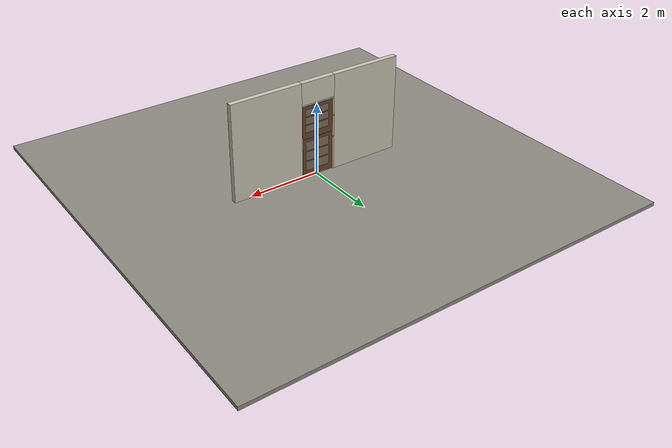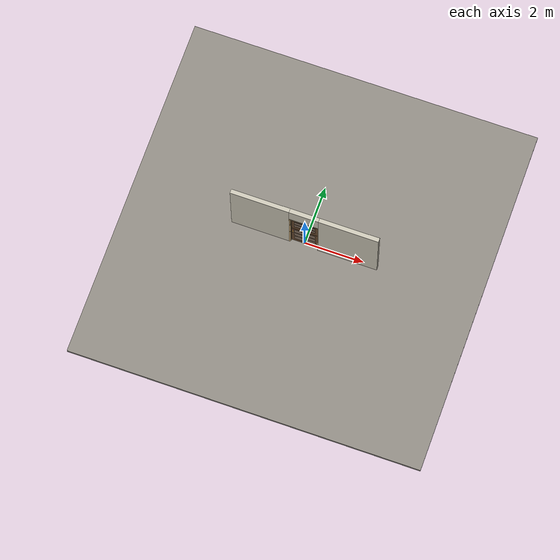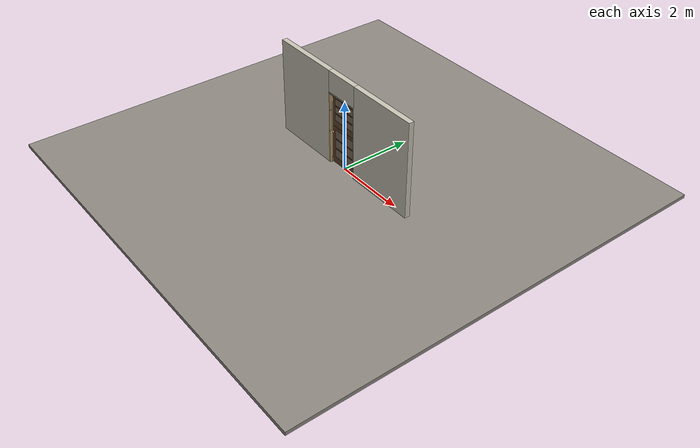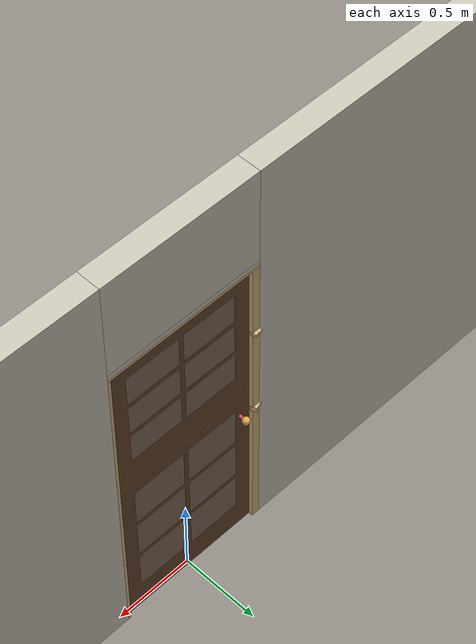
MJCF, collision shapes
<?xml version="1.0" ?>
<mujoco model="db0118_dutch_minimal">
  <compiler angle="radian" meshdir="../../hardware" texturedir="../../textures" autolimits="true" inertiafromgeom="false"/>
  <option timestep="0.002" integrator="implicitfast" cone="elliptic" impratio="10" noslip_iterations="3">
    <flag multiccd="enable"/>
  </option>
  <size memory="16M"/>
  <default>
    <geom condim="4" solref="0.005 1" solimp="0.95 0.99 0.001"/>
    <joint solreflimit="0.005 1" solimplimit="0.95 0.99 0.001"/>
    <tendon solreflimit="0.005 1"/>
    <equality solref="0.002 1"/>
  </default>
  <visual>
    <headlight ambient="0.4 0.4 0.4" diffuse="0.7 0.7 0.7" specular="0.2 0.2 0.2"/>
    <quality shadowsize="4096"/>
    <map znear="0.01" zfar="60"/>
  </visual>
  <asset>
    <mesh name="knob_d1888f6f03" file="knob_d1888f6f03.obj"/>
    <material name="mat_floor" rgba="0.55 0.53 0.5 1" specular="0.2" shininess="0.15" reflectance="0"/>
    <material name="mat_wall" rgba="0.78 0.76 0.7 1" specular="0.2" shininess="0.1" reflectance="0"/>
    <material name="mat_leaf_lower" rgba="0.391 0.27 0.17 1" specular="0.2" shininess="0.5" reflectance="0"/>
    <material name="mat_glass" rgba="0.85 0.92 0.95 0.25" specular="0.2" shininess="0.95" reflectance="0.1"/>
    <material name="mat_leaf_upper" rgba="0.391 0.27 0.17 1" specular="0.2" shininess="0.5" reflectance="0"/>
    <material name="mat_op_brass" rgba="0.85 0.66 0.3 1" specular="0.8" shininess="0.75" reflectance="0.4"/>
    <material name="mat_trim" rgba="0.85 0.66 0.3 1" specular="0.8" shininess="0.75" reflectance="0.4"/>
    <material name="mat_bolt" rgba="0.85 0.66 0.3 1" specular="0.8" shininess="0.75" reflectance="0.4"/>
    <material name="mat_joinbolt" rgba="0.85 0.66 0.3 1" specular="0.8" shininess="0.75" reflectance="0.4"/>
    <material name="mat_frame" rgba="0.82 0.7 0.5 1" specular="0.2" shininess="0.45" reflectance="0"/>
    <material name="mat_hinge" rgba="0.65 0.66 0.68 1" specular="0.74" shininess="0.5" reflectance="0.36"/>
    <texture name="skybox" type="skybox" builtin="gradient" rgb1="0.6 0.7 0.85" rgb2="0.9 0.92 0.95" width="256" height="256"/>
  </asset>
  <worldbody>
    <light name="sun" pos="1.5 -2.5 4" dir="-0.3 0.5 -0.8" directional="true" diffuse="0.8 0.8 0.8" specular="0.3 0.3 0.3" castshadow="true"/>
    <light name="fill" pos="-1.5 2.5 3" dir="0.3 -0.5 -0.7" directional="true" diffuse="0.35 0.35 0.4" castshadow="false"/>
    <camera name="robot_view" pos="0 -2.572687 1.734312" xyaxes="1 0 0 0 0.26963 0.962964" fovy="52"/>
    <camera name="far_view" pos="0 2.511687 1.734312" xyaxes="-1 0 0 0 -0.26963 0.962964" fovy="52"/>
    <camera name="iso" pos="-1.932062 -2.165938 2.141063" xyaxes="0.741536 -0.670913 0 0.242917 0.268487 0.932151" fovy="46"/>
    <camera name="detail_handle" pos="-0.2065 -0.8685 1.245" xyaxes="0.97561 0.219512 0 -0.070934 0.315262 0.94635" fovy="38"/>
    <geom name="floor" type="box" size="6 6 0.05" pos="0 0 -0.05" material="mat_floor" group="0" contype="1" conaffinity="1" friction="0.8 0.005 0.0001" density="2400"/>
    <geom name="wall_left" type="box" size="0.99525 0.0725 1.35" pos="-1.50475 -0.0305 1.35" material="mat_wall" group="0" contype="1" conaffinity="1" friction="0.6 0.005 0.0001" density="800"/>
    <geom name="wall_right" type="box" size="1.01025 0.0725 1.35" pos="1.48975 -0.0305 1.35" material="mat_wall" group="0" contype="1" conaffinity="1" friction="0.6 0.005 0.0001" density="800"/>
    <geom name="wall_header" type="box" size="0.4945 0.0725 0.303" pos="-0.015 -0.0305 2.397" material="mat_wall" group="0" contype="1" conaffinity="1" friction="0.6 0.005 0.0001" density="800"/>
    <geom name="jamb_hinge" type="box" size="0.0095 0.0725 1.0225" pos="0.47 -0.0305 1.0225" material="mat_frame" group="0" contype="1" conaffinity="1" friction="0.6 0.005 0.0001" density="400"/>
    <geom name="strike_965_wall_n" type="box" size="0.0245 0.047575 0.0167" pos="-0.485 -0.055425 0.965" material="mat_frame" group="0" contype="1" conaffinity="1" friction="0.6 0.005 0.0001" density="400"/>
    <geom name="strike_965_wall_p" type="box" size="0.0245 0.008 0.0167" pos="-0.485 0.01585 0.965" material="mat_frame" group="0" contype="1" conaffinity="1" friction="0.6 0.005 0.0001" density="400"/>
    <geom name="strike_965_ramp" type="box" size="0.0245 0.020268 0.0167" pos="-0.490408 0.034645 0.965" quat="0.985179 0 0 0.171531" material="mat_frame" group="0" contype="1" conaffinity="1" friction="0.12 0.005 0.0001" density="400"/>
    <geom name="strike_965_back" type="box" size="0.01615 0.00785 0.0167" pos="-0.49335 0 0.965" material="mat_frame" group="0" contype="1" conaffinity="1" friction="0.6 0.005 0.0001" density="400"/>
    <geom name="strike_1575_wall_n" type="box" size="0.0245 0.04775 0.01" pos="-0.485 -0.05525 1.575" material="mat_frame" group="0" contype="1" conaffinity="1" friction="0.6 0.005 0.0001" density="400"/>
    <geom name="strike_1575_wall_p" type="box" size="0.0245 0.008 0.01" pos="-0.485 0.0155 1.575" material="mat_frame" group="0" contype="1" conaffinity="1" friction="0.6 0.005 0.0001" density="400"/>
    <geom name="strike_1575_ramp" type="box" size="0.0245 0.019412 0.01" pos="-0.487296 0.039595 1.575" quat="0.997916 0 0 0.064529" material="mat_frame" group="0" contype="1" conaffinity="1" friction="0.12 0.005 0.0001" density="400"/>
    <geom name="strike_1575_ramp_n" type="box" size="0.0245 0.019412 0.01" pos="-0.487296 -0.027595 1.575" quat="0.997916 0 0 -0.064529" material="mat_frame" group="0" contype="1" conaffinity="1" friction="0.12 0.005 0.0001" density="400"/>
    <geom name="strike_1575_back" type="box" size="0.0205 0.0075 0.01" pos="-0.489 0 1.575" material="mat_frame" group="0" contype="1" conaffinity="1" friction="0.6 0.005 0.0001" density="400"/>
    <geom name="jamb_strike_0" type="box" size="0.0245 0.0725 0.47415" pos="-0.485 -0.0305 0.47415" material="mat_frame" group="0" contype="1" conaffinity="1" friction="0.6 0.005 0.0001" density="400"/>
    <geom name="jamb_strike_1" type="box" size="0.0245 0.0725 0.29165" pos="-0.485 -0.0305 1.27335" material="mat_frame" group="0" contype="1" conaffinity="1" friction="0.6 0.005 0.0001" density="400"/>
    <geom name="jamb_strike_2" type="box" size="0.0245 0.0725 0.23" pos="-0.485 -0.0305 1.815" material="mat_frame" group="0" contype="1" conaffinity="1" friction="0.6 0.005 0.0001" density="400"/>
    <geom name="jamb_head" type="box" size="0.4945 0.0725 0.0095" pos="-0.015 -0.0305 2.0545" material="mat_frame" group="0" contype="1" conaffinity="1" friction="0.6 0.005 0.0001" density="400"/>
    <geom name="head_stud" type="box" size="0.4945 0.0725 0.015" pos="-0.015 -0.0305 2.079" material="mat_wall" group="0" contype="1" conaffinity="1" friction="0.6 0.005 0.0001" density="500"/>
    <geom name="stop_hinge" type="box" size="0.0055 0.016 1.0225" pos="0.455 -0.0385 1.0225" material="mat_frame" group="0" contype="1" conaffinity="1" friction="0.6 0.005 0.0001" density="400"/>
    <geom name="stop_strike" type="box" size="0.0055 0.016 1.0225" pos="-0.455 -0.0385 1.0225" material="mat_frame" group="0" contype="1" conaffinity="1" friction="0.6 0.005 0.0001" density="400"/>
    <geom name="stop_head" type="box" size="0.4605 0.016 0.0055" pos="0 -0.0385 2.0395" material="mat_frame" group="0" contype="1" conaffinity="1" friction="0.6 0.005 0.0001" density="400"/>
    <site name="approach_point" pos="0 -1.5 0" quat="1 0 0 0" size="0.05" rgba="0.2 0.9 0.2 0.5" group="4"/>
    <site name="goal_point" pos="0 1.5 0" quat="1 0 0 0" size="0.05" rgba="0.2 0.9 0.2 0.5" group="4"/>
    <site name="door_plane_center" pos="0 0 1.0225" quat="1 0 0 0" size="0.02" rgba="0.2 0.9 0.2 0.5" group="4"/>
    <body name="leaf_lower" pos="0.4605 0 0">
      <inertial pos="-0.46 0 0.578826" mass="22.087265" quat="-0.5 0.5 0.5 0.5" diaginertia="1.343953805 1.933396169 3.270037551"/>
      <joint name="leaf_lower_hinge" type="hinge" axis="0 0 -1" pos="-0.003 0.029 0" limited="true" range="0 1.745329" damping="0.30611" frictionloss="0.3875" armature="0.02"/>
      <geom name="leaf_lower_slab" type="box" size="0.457 0.022 0.551" pos="-0.46 0 0.563" material="mat_leaf_lower" group="0" contype="1" conaffinity="1" friction="0.4 0.005 0.0001" density="1"/>
      <geom name="leaf_lower_glass_0" type="box" size="0.17073 0.0228 0.128667" pos="-0.27427 0 0.320667" material="mat_glass" group="1" contype="0" conaffinity="0" density="1"/>
      <geom name="leaf_lower_glass_1" type="box" size="0.17073 0.0228 0.128667" pos="-0.64573 0 0.320667" material="mat_glass" group="1" contype="0" conaffinity="0" density="1"/>
      <geom name="leaf_lower_glass_2" type="box" size="0.17073 0.0228 0.128667" pos="-0.27427 0 0.608" material="mat_glass" group="1" contype="0" conaffinity="0" density="1"/>
      <geom name="leaf_lower_glass_3" type="box" size="0.17073 0.0228 0.128667" pos="-0.64573 0 0.608" material="mat_glass" group="1" contype="0" conaffinity="0" density="1"/>
      <geom name="leaf_lower_glass_4" type="box" size="0.17073 0.0228 0.128667" pos="-0.27427 0 0.895333" material="mat_glass" group="1" contype="0" conaffinity="0" density="1"/>
      <geom name="leaf_lower_glass_5" type="box" size="0.17073 0.0228 0.128667" pos="-0.64573 0 0.895333" material="mat_glass" group="1" contype="0" conaffinity="0" density="1"/>
      <body name="lower_handle" pos="-0.847 0 0.965">
        <inertial pos="0 0 0" mass="1.098683" quat="0.5 0.5 0.5 0.5" diaginertia="0.000311555 0.004248143 0.004248143"/>
        <joint name="lower_handle_hinge" type="hinge" axis="0 1 0" limited="true" range="0 0.87" damping="0.143614" frictionloss="0.038" stiffness="0.5" springref="-0.5" armature="0.01"/>
        <geom name="lower_handle_knob_n" type="mesh" mesh="knob_d1888f6f03" pos="0 -0.022 0" quat="0 0 -0.707107 0.707107" material="mat_op_brass" group="1" contype="0" conaffinity="0" density="3000"/>
        <geom name="lower_handle_knob_col_n" type="sphere" size="0.0243" pos="0 -0.0685 0" material="mat_op_brass" group="0" contype="1" conaffinity="1" friction="0.9 0.01 0.0001" density="3000"/>
        <geom name="lower_handle_knob_neck_n" type="cylinder" size="0.011 0.012" pos="0 -0.034 0" quat="0.707107 -0.707107 0 0" material="mat_op_brass" group="3" contype="1" conaffinity="1" rgba="0.8 0.3 0.3 0.25" friction="0.6 0.005 0.0001" density="3000"/>
        <geom name="lower_handle_knob_p" type="mesh" mesh="knob_d1888f6f03" pos="0 0.022 0" quat="0 0 0.707107 0.707107" material="mat_op_brass" group="1" contype="0" conaffinity="0" density="3000"/>
        <geom name="lower_handle_knob_col_p" type="sphere" size="0.0243" pos="0 0.0685 0" material="mat_op_brass" group="0" contype="1" conaffinity="1" friction="0.9 0.01 0.0001" density="3000"/>
        <geom name="lower_handle_knob_neck_p" type="cylinder" size="0.011 0.012" pos="0 0.034 0" quat="0.707107 -0.707107 0 0" material="mat_op_brass" group="3" contype="1" conaffinity="1" rgba="0.8 0.3 0.3 0.25" friction="0.6 0.005 0.0001" density="3000"/>
        <site name="lower_handle_grip_n" pos="0 -0.0685 0" quat="1 0 0 0" size="0.012" rgba="0.2 0.9 0.2 0.5" group="4"/>
        <site name="lower_handle_grip_p" pos="0 0.0685 0" quat="1 0 0 0" size="0.012" rgba="0.2 0.9 0.2 0.5" group="4"/>
      </body>
      <body name="lower_latch_bolt" pos="-0.917 0 0.965">
        <inertial pos="0.00865 0 0" mass="0.041419" quat="0.92388 0.382683 0 0" diaginertia="0.000000798 0.000005598 0.000005598"/>
        <joint name="lower_latch_bolt_slide" type="slide" axis="1 0 0" limited="true" range="0 0.0127" damping="2" frictionloss="0.3" stiffness="300" springref="-0.008333" armature="0.1"/>
        <geom name="lower_latch_bolt_capsule" type="capsule" size="0.00635 0.015" pos="0.00865 0 0" quat="0.707107 0 -0.707107 0" material="mat_bolt" group="0" contype="1" conaffinity="1" friction="0.2 0.005 0.0001" density="8500"/>
      </body>
    </body>
    <body name="leaf_upper" pos="0.4605 0 0">
      <inertial pos="-0.46 0 1.59187" mass="17.67192" quat="0 0 -0.707107 0.707107" diaginertia="1.039731244 1.084821115 2.11871069"/>
      <joint name="leaf_upper_hinge" type="hinge" axis="0 0 -1" pos="-0.003 0.029 0" limited="true" range="0 1.745329" damping="0.30611" frictionloss="0.3875" armature="0.02"/>
      <geom name="leaf_upper_slab" type="box" size="0.457 0.022 0.455" pos="-0.46 0 1.577" material="mat_leaf_upper" group="0" contype="1" conaffinity="1" friction="0.4 0.005 0.0001" density="1"/>
      <geom name="leaf_upper_glass_0" type="box" size="0.17073 0.0228 0.096667" pos="-0.27427 0 1.398667" material="mat_glass" group="1" contype="0" conaffinity="0" density="1"/>
      <geom name="leaf_upper_glass_1" type="box" size="0.17073 0.0228 0.096667" pos="-0.64573 0 1.398667" material="mat_glass" group="1" contype="0" conaffinity="0" density="1"/>
      <geom name="leaf_upper_glass_2" type="box" size="0.17073 0.0228 0.096667" pos="-0.27427 0 1.622" material="mat_glass" group="1" contype="0" conaffinity="0" density="1"/>
      <geom name="leaf_upper_glass_3" type="box" size="0.17073 0.0228 0.096667" pos="-0.64573 0 1.622" material="mat_glass" group="1" contype="0" conaffinity="0" density="1"/>
      <geom name="leaf_upper_glass_4" type="box" size="0.17073 0.0228 0.096667" pos="-0.27427 0 1.845333" material="mat_glass" group="1" contype="0" conaffinity="0" density="1"/>
      <geom name="leaf_upper_glass_5" type="box" size="0.17073 0.0228 0.096667" pos="-0.64573 0 1.845333" material="mat_glass" group="1" contype="0" conaffinity="0" density="1"/>
    </body>
  </worldbody>
  <tendon>
    <fixed name="lower_latch_bolt_coupling" limited="true" range="0 10">
      <joint joint="lower_latch_bolt_slide" coef="1"/>
      <joint joint="lower_handle_hinge" coef="-0.015679"/>
    </fixed>
  </tendon>
  <sensor>
    <jointpos name="leaf_lower_hinge_pos" joint="leaf_lower_hinge"/>
    <jointvel name="leaf_lower_hinge_vel" joint="leaf_lower_hinge"/>
    <jointpos name="leaf_upper_hinge_pos" joint="leaf_upper_hinge"/>
    <jointvel name="leaf_upper_hinge_vel" joint="leaf_upper_hinge"/>
    <jointpos name="lower_handle_hinge_pos" joint="lower_handle_hinge"/>
    <jointvel name="lower_handle_hinge_vel" joint="lower_handle_hinge"/>
    <jointpos name="lower_latch_bolt_slide_pos" joint="lower_latch_bolt_slide"/>
    <jointvel name="lower_latch_bolt_slide_vel" joint="lower_latch_bolt_slide"/>
  </sensor>
</mujoco>
